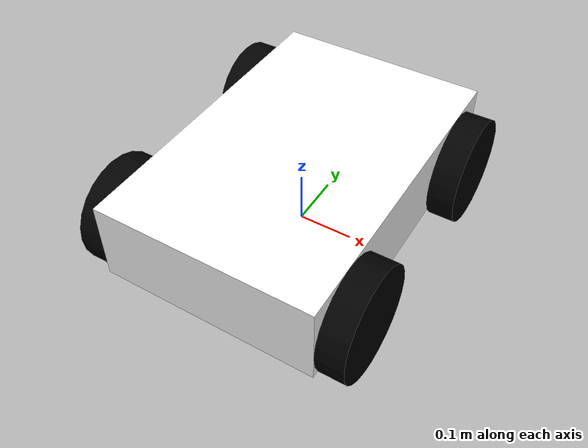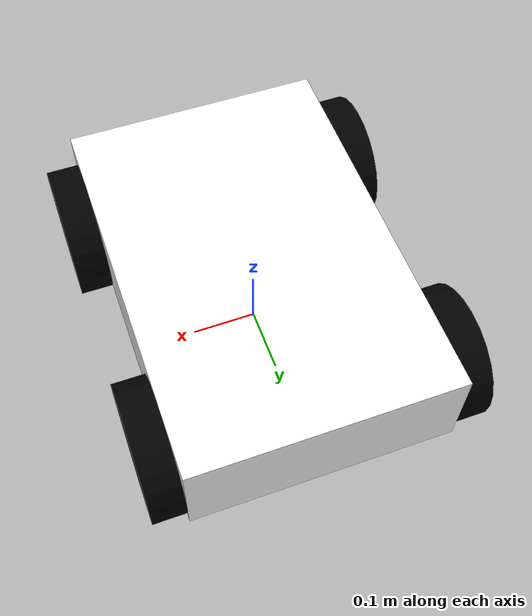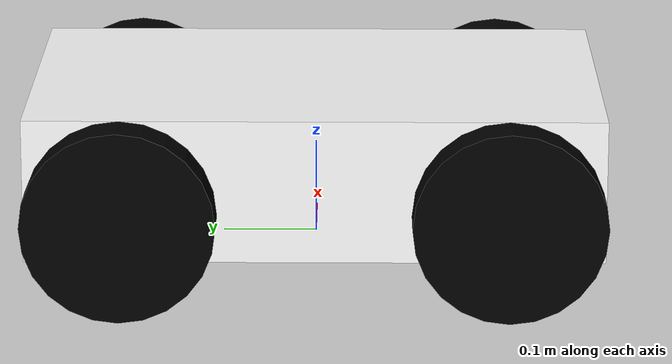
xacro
<?xml version="1.0"?>
<!-- 4 wheeled robot -->
<!-- Created by Justice John Owusu -->
<!-- Date 2026-03-18 -->

<robot name= "bob" xmlns:xacro="http://www.ros.org/wiki/xacro">

<!-- dimensions of the body -->
<xacro:property name= "bx_dim" value = "0.4"/>
<xacro:property name= "by_dim" value = "0.6"/>
<xacro:property name= "bz_dim" value = "0.15"/>

<!-- Wheel dimensions -->
<xacro:property name= "w_rad" value = "0.1"/>
<xacro:property name= "w_len" value = "0.05"/>
<xacro:property name= "w_z" value = "${2*w_rad-bz_dim/2}"/>

<!-- constants -->
<xacro:property name= "pi_const" value = "3.14159265358"/>

<!--Densities -->
<xacro:property name= "b_dens" value = "1"/>
<xacro:property name= "w_dens" value = "1"/>

<!-- Masses -->
<xacro:property name= "b_mass" value = "${b_dens* bx_dim * by_dim* bz_dim}"/>
<xacro:property name= "w_mass" value = "${w_dens* pi_const* w_rad* w_rad* w_len}"/>

<!-- wheel properties -->
<xacro:property name="I_wheel" value="${0.5 * w_mass * w_rad * w_rad}"/>
<xacro:property name= "effort" value = "1000"/>
<xacro:property name = "velocity" value = "1000"/>
<xacro:property name = "friction" value = "1.0"/>
<xacro:property name = "damping" value = "1.0"/>

<!-- Wheel inertia -->
<xacro:macro name="wheel_inertia">
<inertial>
<origin rpy= "0 0 0" xyz = "0 0 0"/>
<mass value = "${w_mass}"/>
<inertia ixx = "${I_wheel}" ixy = "0.0" ixz = "0.0" iyy = "${I_wheel}" iyz = "0.0" izz= "${I_wheel}"/>
</inertial>
</xacro:macro>

<!-- wheel -->
<xacro:macro name="wheel_def" params = "name">
<link name="${name}">
    <visual>
        <origin rpy = "0 ${pi_const/2} 0 " xyz="0 0 0"/>
        <geometry>
            <cylinder radius="${w_rad}" length="${w_len}"/>
        </geometry>
        <material name = "black">
            <color rgba = "0 0 0 1"/>
        </material>
    </visual>

    <collision>
        <geometry>
            <cylinder radius="${w_rad}" length="${w_len}"/>
        </geometry>
        <origin rpy="0  ${pi_const/2} 0" xyz="0 0 0"/>
    </collision>

    <xacro:wheel_inertia/>
</link>
</xacro:macro>
<!-- Beginning of the dummy link -->
<link name = "dummy">
</link>

<joint name = "dummy_joint" type = "fixed">
<parent link = "dummy"/>
<child link = "body"/>
<origin rpy= "0 0 0" xyz = "0 0 ${w_rad}"/>
</joint>

<!-- end of the dummy link -->

<!-- Beginning of the body link -->
<link name = "body">
<visual>
<origin rpy= "0 0 0" xyz = "0 0 0"/>
<geometry>
<box size = "${bx_dim} ${by_dim} ${bz_dim}"/>
</geometry>
<material name = "black">
    <color rgba = "1 1 1 1"/>
</material>
</visual>

<collision>
<geometry>
<box size = "${bx_dim} ${by_dim} ${bz_dim}"/>
</geometry>
<origin rpy= "0 0 0" xyz = "0 0 0"/>
</collision>

<inertial>
<origin rpy="0 0 0" xyz="0 0 0"/>
        <mass value="${b_mass}"/>
        <inertia ixx="${b_mass*(by_dim*by_dim + bz_dim*bz_dim)/12.0}"
        ixy="0.0" ixz="0.0" iyy="${(1.0/12.0)*b_mass*(bx_dim*bx_dim + bz_dim*bz_dim)}"
        iyz="0.0" izz="${(1.0/12.0)*b_mass*(bx_dim*bx_dim + by_dim*by_dim)}"/>
</inertial>

</link>

<!-- end of the body link -->

<!-- beginning of the wheel joints -->
<joint name = "wj_LF" type = "continuous">
<parent link = "body"/>
<child link = "LF_wheel"/>
<origin xyz="${-bx_dim/2 - w_len/2} ${-by_dim/2 + w_rad} ${bz_dim/2 - w_rad}" rpy="0 0 0"/>
    <axis xyz="1 0 0"/>
    <limit effort="${effort}" velocity="${velocity}"/>
    <dynamics damping="${damping}" friction="${friction}"/>
</joint>

<joint name = "wj_LB" type = "continuous">
<parent link = "body"/>
<child link = "LB_wheel"/>
<origin xyz="${-bx_dim/2 - w_len/2 } ${by_dim/2 - w_rad} ${bz_dim/2 - w_rad}" rpy="0 0 0"/>
    <axis xyz="1 0 0"/>
    <limit effort="${effort}" velocity="${velocity}"/>
    <dynamics damping="${damping}" friction="${friction}"/>
</joint>

<joint name = "wj_RF" type = "continuous">
<parent link = "body"/>
<child link = "RF_wheel"/>
<origin xyz="${bx_dim/2 + w_len/2} ${-by_dim/2 + w_rad} ${bz_dim/2 - w_rad}" rpy="0 0 0"/>
    <axis xyz="1 0 0"/>
    <limit effort="${effort}" velocity="${velocity}"/>
    <dynamics damping="${damping}" friction="${friction}"/>
</joint>

<joint name = "wj_RB" type = "continuous">
<parent link = "body"/>
<child link = "RB_wheel"/>
<origin xyz="${bx_dim/2 + w_len/2} ${by_dim/2 - w_rad} ${bz_dim/2 - w_rad}" rpy="0 0 0"/>
    <axis xyz="1 0 0"/>
    <limit effort="${effort}" velocity="${velocity}"/>
    <dynamics damping="${damping}" friction="${friction}"/>
</joint>

<!-- end of the wheel joints -->

<!-- Beginning of wheel links -->
<xacro:wheel_def name = "LF_wheel"/>
<xacro:wheel_def name = "LB_wheel"/>
<xacro:wheel_def name = "RF_wheel"/>
<xacro:wheel_def name = "RB_wheel"/>

<!-- end of wheel links -->

</robot>
